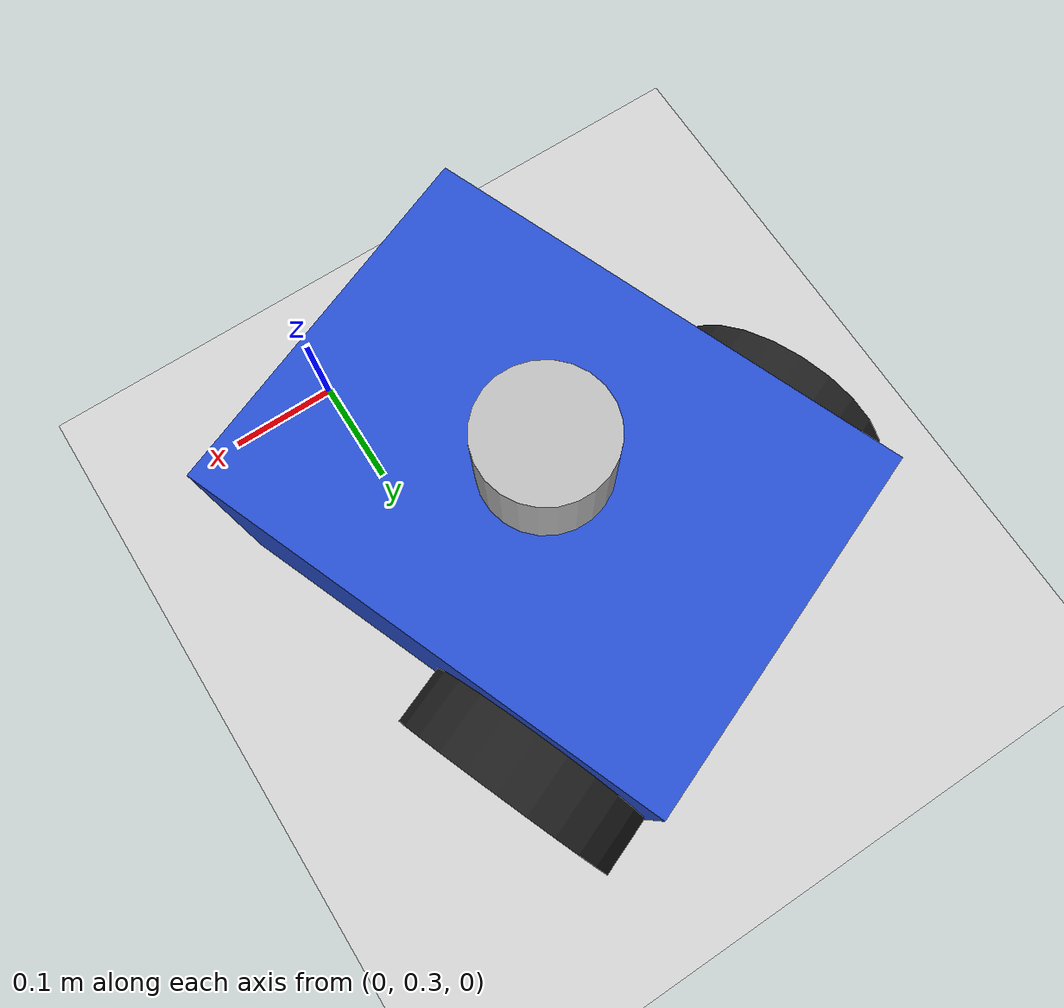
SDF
<sdf version="1.7">
 <world name="default">
  <model name="ground_plane">
   <pose>0 -0.2 0 0 -0 0</pose>
   <static>1</static>
   <link name="link">
    <collision name="collision">
     <geometry><plane><normal>0 0 1</normal><size>100 100</size></plane></geometry>
     <surface><friction><ode><mu>100</mu><mu2>50</mu2></ode></friction></surface>
    </collision>
    <visual name="visual">
     <cast_shadows>0</cast_shadows>
     <geometry><plane><normal>0 0 1</normal><size>100 100</size></plane></geometry>
     <material>
      <script><uri>file://media/materials/scripts/gazebo.material</uri><name>Gazebo/Grey</name></script>
     </material>
    </visual>
   </link>
  </model>
  <light name="sun" type="directional">
   <pose>0 0 10 0 -0 0</pose>
   <diffuse>0.8 0.8 0.8 1</diffuse>
   <specular>0.2 0.2 0.2 1</specular>
   <attenuation>
    <range>1000</range>
    <constant>0.9</constant>
    <linear>0.01</linear>
    <quadratic>0.001</quadratic>
   </attenuation>
   <direction>-0.5 0.1 -0.9</direction>
   <spot><inner_angle>0</inner_angle><outer_angle>0</outer_angle><falloff>0</falloff></spot>
  </light>
  <scene><shadows>0</shadows><ambient>0.4 0.4 0.4 1</ambient><background>0.7 0.7 0.7 1</background></scene>
  <physics type="ode">
   <real_time_update_rate>1000</real_time_update_rate>
   <max_step_size>0.001</max_step_size>
   <real_time_factor>1</real_time_factor>
   <ode>
    <solver>
     <type>quick</type>
     <iters>150</iters>
     <precon_iters>0</precon_iters>
     <sor>1.4</sor>
     <use_dynamic_moi_rescaling>1</use_dynamic_moi_rescaling>
    </solver>
    <constraints>
     <cfm>1e-05</cfm>
     <erp>0.2</erp>
     <contact_max_correcting_vel>2000</contact_max_correcting_vel>
     <contact_surface_layer>0.01</contact_surface_layer>
    </constraints>
   </ode>
  </physics>
  <gravity>0 0 -9.8</gravity>
  <magnetic_field>6e-06 2.3e-05 -4.2e-05</magnetic_field>
  <atmosphere type="adiabatic"/>
  <audio><device>default</device></audio>
  <spherical_coordinates>
   <surface_model>EARTH_WGS84</surface_model>
   <latitude_deg>0</latitude_deg>
   <longitude_deg>0</longitude_deg>
   <elevation>0</elevation>
   <heading_deg>0</heading_deg>
  </spherical_coordinates>
  <model name="my_robot">
   <link name="base_link">
    <inertial>
     <pose>0.00283 0 0.053208 0 -0 0</pose>
     <mass>5.3</mass>
     <inertia>
      <ixx>0.0889905</ixx>
      <ixy>0</ixy>
      <ixz>0.00154811</ixz>
      <iyy>0.141198</iyy>
      <iyz>0</iyz>
      <izz>0.186608</izz>
     </inertia>
    </inertial>
    <collision name="base_link_collision">
     <pose>0 0 0.05 0 -0 0</pose>
     <geometry><box><size>0.4 0.3 0.2</size></box></geometry>
    </collision>
    <collision name="base_link_fixed_joint_lump__caster_wheel_collision_1">
     <pose>0.15 0 -0.05 0 -0 0</pose>
     <geometry><sphere><radius>0.05</radius></sphere></geometry>
     <surface>
      <contact><ode><kp>1e+06</kp><kd>10</kd></ode></contact>
      <friction><ode><mu>0</mu><mu2>0</mu2></ode></friction>
     </surface>
    </collision>
    <collision name="base_link_fixed_joint_lump__lidar_link_collision_2">
     <pose>0 0 0.185 0 -0 0</pose>
     <geometry><cylinder><length>0.07</length><radius>0.05</radius></cylinder></geometry>
    </collision>
    <visual name="base_link_visual">
     <pose>0 0 0.05 0 -0 0</pose>
     <geometry><box><size>0.4 0.3 0.2</size></box></geometry>
     <material>
      <script><name>Gazebo/Blue</name><uri>file://media/materials/scripts/gazebo.material</uri></script>
     </material>
    </visual>
    <visual name="base_link_fixed_joint_lump__caster_wheel_visual_1">
     <pose>0.15 0 -0.05 0 -0 0</pose>
     <geometry><sphere><radius>0.05</radius></sphere></geometry>
     <material>
      <script><name>Gazebo/Grey</name><uri>file://media/materials/scripts/gazebo.material</uri></script>
     </material>
    </visual>
    <visual name="base_link_fixed_joint_lump__lidar_link_visual_2">
     <pose>0 0 0.185 0 -0 0</pose>
     <geometry><cylinder><length>0.07</length><radius>0.05</radius></cylinder></geometry>
    </visual>
    <sensor name="hokuyo" type="ray">
     <visualize>1</visualize>
     <update_rate>40</update_rate>
     <ray>
      <scan>
       <horizontal>
        <samples>720</samples>
        <resolution>1</resolution>
        <min_angle>-3.14159</min_angle>
        <max_angle>3.14159</max_angle>
       </horizontal>
       <vertical><samples>1</samples><min_angle>0</min_angle><max_angle>0</max_angle></vertical>
      </scan>
      <range><min>0.1</min><max>30</max><resolution>0.01</resolution></range>
      <noise><type>gaussian</type><mean>0</mean><stddev>0.01</stddev></noise>
     </ray>
     <plugin name="gazebo_ros_head_hokuyo_controller" filename="libgazebo_ros_laser.so">
      <topicName>/scan</topicName>
      <frameName>lidar_link</frameName>
     </plugin>
     <pose>0 0 0.185 0 -0 0</pose>
    </sensor>
   </link>
   <joint name="left_wheel_joint" type="revolute">
    <pose relative_to="base_link">-0.1 0.175 0 1.5708 -0 0</pose>
    <parent>base_link</parent>
    <child>left_wheel</child>
    <axis>
     <xyz>0 0 1</xyz>
     <limit><lower>-1e+16</lower><upper>1e+16</upper></limit>
     <dynamics><spring_reference>0</spring_reference><spring_stiffness>0</spring_stiffness></dynamics>
    </axis>
   </joint>
   <link name="left_wheel">
    <pose relative_to="left_wheel_joint">0 0 0 0 -0 0</pose>
    <inertial>
     <mass>0.5</mass>
     <inertia><ixx>0.00133</ixx><ixy>0</ixy><ixz>0</ixz><iyy>0.00133</iyy><iyz>0</iyz><izz>0.0025</izz></inertia>
    </inertial>
    <collision name="left_wheel_collision">
     <geometry><cylinder><length>0.05</length><radius>0.1</radius></cylinder></geometry>
     <surface>
      <contact><ode><kp>1e+06</kp><kd>100</kd></ode></contact>
      <friction><ode><mu>1</mu><mu2>1</mu2></ode></friction>
     </surface>
    </collision>
    <visual name="left_wheel_visual">
     <geometry><cylinder><length>0.05</length><radius>0.1</radius></cylinder></geometry>
     <material>
      <script><name>Gazebo/Black</name><uri>file://media/materials/scripts/gazebo.material</uri></script>
     </material>
    </visual>
   </link>
   <joint name="right_wheel_joint" type="revolute">
    <pose relative_to="base_link">-0.1 -0.175 0 1.5708 -0 0</pose>
    <parent>base_link</parent>
    <child>right_wheel</child>
    <axis>
     <xyz>0 0 1</xyz>
     <limit><lower>-1e+16</lower><upper>1e+16</upper></limit>
     <dynamics><spring_reference>0</spring_reference><spring_stiffness>0</spring_stiffness></dynamics>
    </axis>
   </joint>
   <link name="right_wheel">
    <pose relative_to="right_wheel_joint">0 0 0 0 -0 0</pose>
    <inertial>
     <mass>0.5</mass>
     <inertia><ixx>0.00133</ixx><ixy>0</ixy><ixz>0</ixz><iyy>0.00133</iyy><iyz>0</iyz><izz>0.0025</izz></inertia>
    </inertial>
    <collision name="right_wheel_collision">
     <geometry><cylinder><length>0.05</length><radius>0.1</radius></cylinder></geometry>
     <surface>
      <contact><ode><kp>1e+06</kp><kd>100</kd></ode></contact>
      <friction><ode><mu>1</mu><mu2>1</mu2></ode></friction>
     </surface>
    </collision>
    <visual name="right_wheel_visual">
     <geometry><cylinder><length>0.05</length><radius>0.1</radius></cylinder></geometry>
     <material>
      <script><name>Gazebo/Black</name><uri>file://media/materials/scripts/gazebo.material</uri></script>
     </material>
    </visual>
   </link>
   <static>0</static>
   <plugin name="differential_drive_controller" filename="libgazebo_ros_diff_drive.so">
    <update_rate>100.0</update_rate>
    <left_joint>left_wheel_joint</left_joint>
    <right_joint>right_wheel_joint</right_joint>
    <wheel_separation>0.35</wheel_separation>
    <wheel_diameter>0.2</wheel_diameter>
    <max_wheel_torque>20</max_wheel_torque>
    <max_wheel_acceleration>1.0</max_wheel_acceleration>
    <command_topic>cmd_vel</command_topic>
    <odometry_topic>odom</odometry_topic>
    <odometry_frame>odom</odometry_frame>
    <robot_base_frame>base_link</robot_base_frame>
    <publish_odom>1</publish_odom>
    <publish_odom_tf>1</publish_odom_tf>
    <publish_wheel_tf>1</publish_wheel_tf>
   </plugin>
   <pose>-0.088871 0.54624 0.099968 0 0.000252 -1.19361</pose>
  </model>
 </world>
</sdf>
